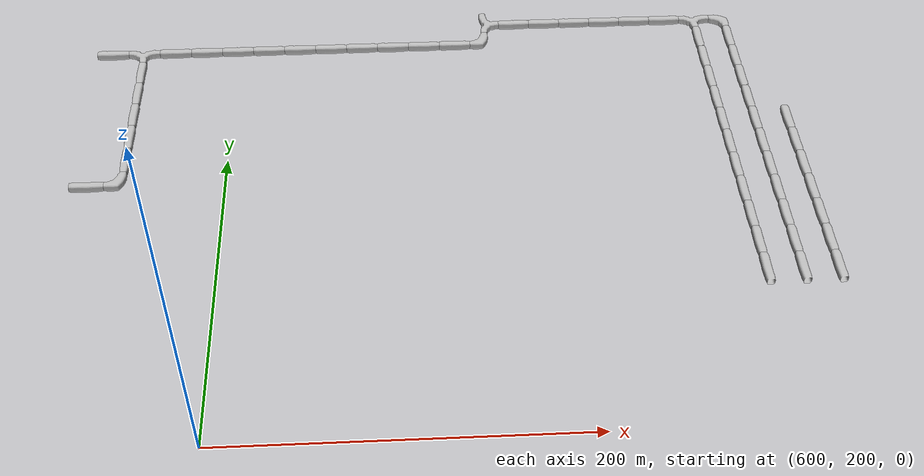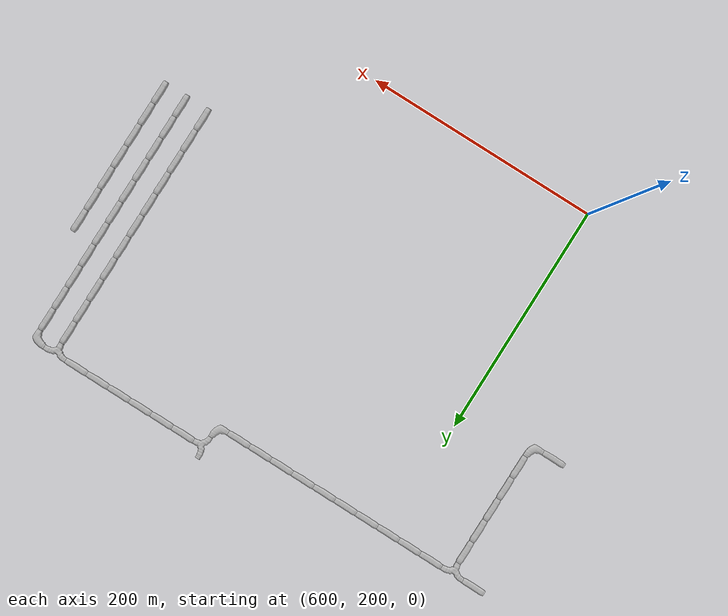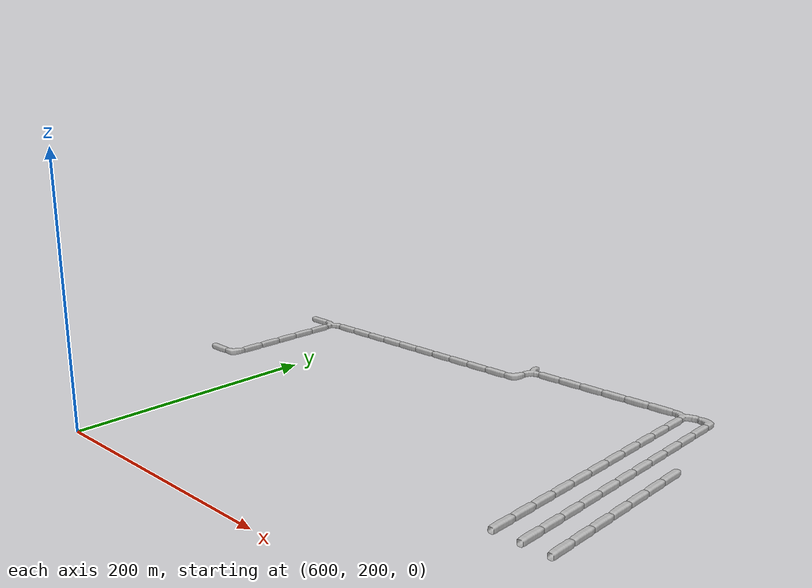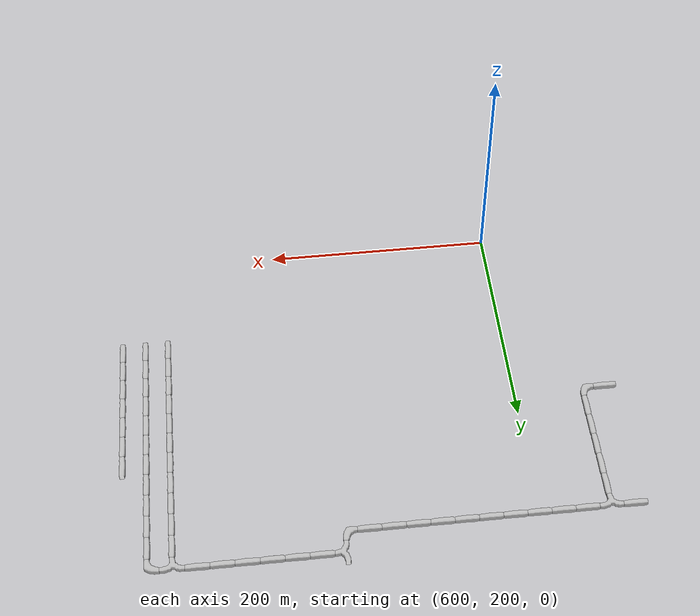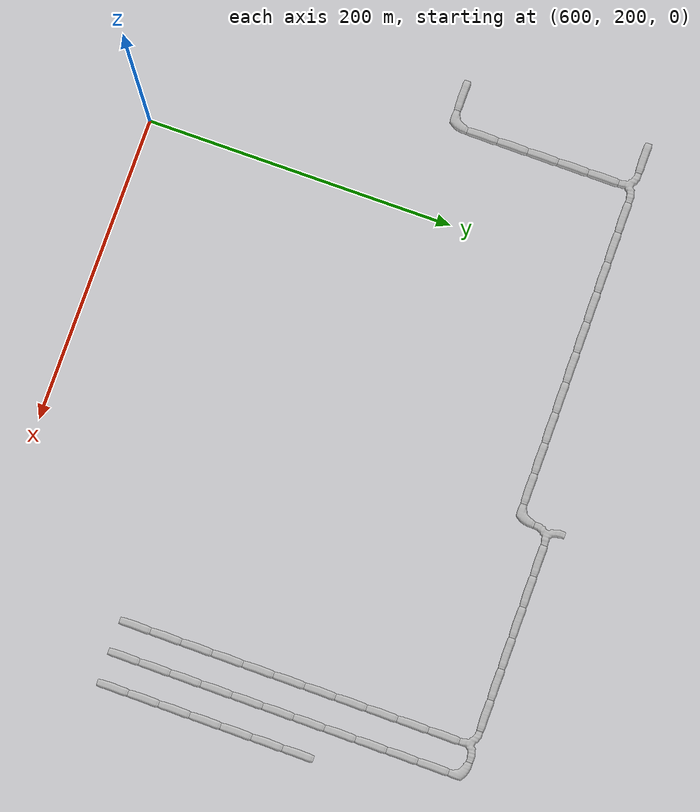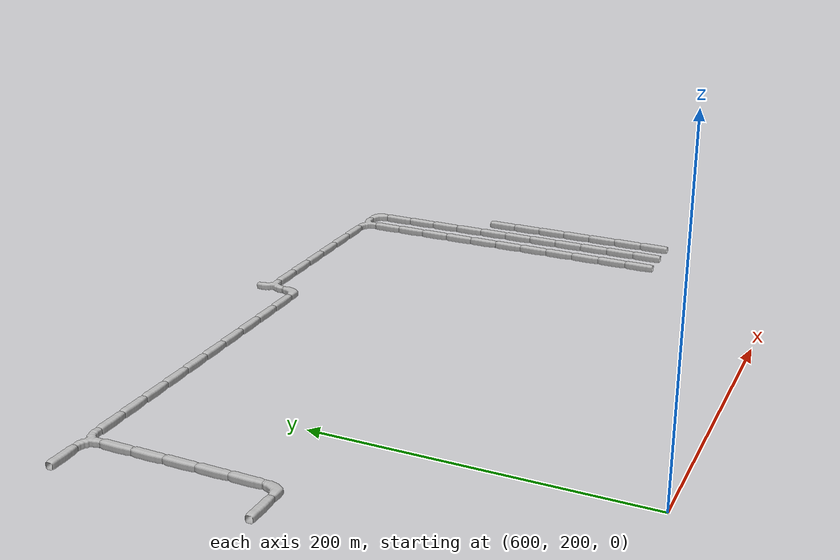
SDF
<sdf version="1.6">
 <world name="cave_32000_2">
  <include>
   <static>true</static>
   <name>cave_46_15</name>
   <pose>920 300 0 0 0 0.0</pose>
   <uri>model://cave_straight_20m</uri>
  </include>
  <include>
   <static>true</static>
   <name>cave_46_16</name>
   <pose>920 320 0 0 0 0.0</pose>
   <uri>model://cave_straight_20m</uri>
  </include>
  <include>
   <static>true</static>
   <name>cave_46_17</name>
   <pose>920 340 0 0 0 0.0</pose>
   <uri>model://cave_straight_20m</uri>
  </include>
  <include>
   <static>true</static>
   <name>cave_46_18</name>
   <pose>920 360 0 0 0 0.0</pose>
   <uri>model://cave_straight_20m</uri>
  </include>
  <include>
   <static>true</static>
   <name>cave_46_19</name>
   <pose>920 380 0 0 0 0.0</pose>
   <uri>model://cave_straight_20m</uri>
  </include>
  <include>
   <static>true</static>
   <name>cave_46_20</name>
   <pose>920 400 0 0 0 0.0</pose>
   <uri>model://cave_straight_20m</uri>
  </include>
  <include>
   <static>true</static>
   <name>cave_46_21</name>
   <pose>920 420 0 0 0 0.0</pose>
   <uri>model://cave_straight_20m</uri>
  </include>
  <include>
   <static>true</static>
   <name>cave_46_22</name>
   <pose>920 440 0 0 0 0.0</pose>
   <uri>model://cave_straight_20m</uri>
  </include>
  <include>
   <static>true</static>
   <name>cave_46_23</name>
   <pose>920 460 0 0 0 0.0</pose>
   <uri>model://cave_straight_20m</uri>
  </include>
  <include>
   <static>true</static>
   <name>cave_46_24</name>
   <pose>920 480 0 0 0 0.0</pose>
   <uri>model://cave_straight_20m</uri>
  </include>
  <include>
   <static>true</static>
   <name>cave_46_25</name>
   <pose>920 500 0 0 0 0.0</pose>
   <uri>model://cave_straight_20m</uri>
  </include>
  <include>
   <static>true</static>
   <name>cave_46_26</name>
   <pose>920 520 0 0 0 3.141592653589793</pose>
   <uri>model://cave_L_20m</uri>
  </include>
  <include>
   <static>true</static>
   <name>cave_45_26</name>
   <pose>900 520 0 0 0 3.141592653589793</pose>
   <uri>model://cave_3way_20m</uri>
  </include>
  <include>
   <static>true</static>
   <name>cave_45_25</name>
   <pose>900 500 0 0 0 0.0</pose>
   <uri>model://cave_straight_20m</uri>
  </include>
  <include>
   <static>true</static>
   <name>cave_45_24</name>
   <pose>900 480 0 0 0 0.0</pose>
   <uri>model://cave_straight_20m</uri>
  </include>
  <include>
   <static>true</static>
   <name>cave_45_23</name>
   <pose>900 460 0 0 0 0.0</pose>
   <uri>model://cave_straight_20m</uri>
  </include>
  <include>
   <static>true</static>
   <name>cave_45_22</name>
   <pose>900 440 0 0 0 0.0</pose>
   <uri>model://cave_straight_20m</uri>
  </include>
  <include>
   <static>true</static>
   <name>cave_45_21</name>
   <pose>900 420 0 0 0 0.0</pose>
   <uri>model://cave_straight_20m</uri>
  </include>
  <include>
   <static>true</static>
   <name>cave_45_20</name>
   <pose>900 400 0 0 0 0.0</pose>
   <uri>model://cave_straight_20m</uri>
  </include>
  <include>
   <static>true</static>
   <name>cave_45_19</name>
   <pose>900 380 0 0 0 0.0</pose>
   <uri>model://cave_straight_20m</uri>
  </include>
  <include>
   <static>true</static>
   <name>cave_45_18</name>
   <pose>900 360 0 0 0 0.0</pose>
   <uri>model://cave_straight_20m</uri>
  </include>
  <include>
   <static>true</static>
   <name>cave_45_17</name>
   <pose>900 340 0 0 0 0.0</pose>
   <uri>model://cave_straight_20m</uri>
  </include>
  <include>
   <static>true</static>
   <name>cave_45_16</name>
   <pose>900 320 0 0 0 0.0</pose>
   <uri>model://cave_straight_20m</uri>
  </include>
  <include>
   <static>true</static>
   <name>cave_45_15</name>
   <pose>900 300 0 0 0 0.0</pose>
   <uri>model://cave_straight_20m</uri>
  </include>
  <include>
   <static>true</static>
   <name>cave_44_26</name>
   <pose>880 520 0 0 0 1.5707963267948966</pose>
   <uri>model://cave_straight_20m</uri>
  </include>
  <include>
   <static>true</static>
   <name>cave_43_26</name>
   <pose>860 520 0 0 0 1.5707963267948966</pose>
   <uri>model://cave_straight_20m</uri>
  </include>
  <include>
   <static>true</static>
   <name>cave_42_26</name>
   <pose>840 520 0 0 0 1.5707963267948966</pose>
   <uri>model://cave_straight_20m</uri>
  </include>
  <include>
   <static>true</static>
   <name>cave_41_26</name>
   <pose>820 520 0 0 0 1.5707963267948966</pose>
   <uri>model://cave_straight_20m</uri>
  </include>
  <include>
   <static>true</static>
   <name>cave_40_26</name>
   <pose>800 520 0 0 0 1.5707963267948966</pose>
   <uri>model://cave_straight_20m</uri>
  </include>
  <include>
   <static>true</static>
   <name>cave_39_26</name>
   <pose>780 520 0 0 0 1.5707963267948966</pose>
   <uri>model://cave_straight_20m</uri>
  </include>
  <include>
   <static>true</static>
   <name>cave_38_26</name>
   <pose>760 520 0 0 0 -1.5707963267948966</pose>
   <uri>model://cave_3way_20m</uri>
  </include>
  <include>
   <static>true</static>
   <name>cave_38_25</name>
   <pose>760 500 0 0 0 1.5707963267948966</pose>
   <uri>model://cave_L_20m</uri>
  </include>
  <include>
   <static>true</static>
   <name>cave_37_25</name>
   <pose>740 500 0 0 0 1.5707963267948966</pose>
   <uri>model://cave_straight_20m</uri>
  </include>
  <include>
   <static>true</static>
   <name>cave_36_25</name>
   <pose>720 500 0 0 0 1.5707963267948966</pose>
   <uri>model://cave_straight_20m</uri>
  </include>
  <include>
   <static>true</static>
   <name>cave_35_25</name>
   <pose>700 500 0 0 0 1.5707963267948966</pose>
   <uri>model://cave_straight_20m</uri>
  </include>
  <include>
   <static>true</static>
   <name>cave_34_25</name>
   <pose>680 500 0 0 0 1.5707963267948966</pose>
   <uri>model://cave_straight_20m</uri>
  </include>
  <include>
   <static>true</static>
   <name>cave_33_25</name>
   <pose>660 500 0 0 0 1.5707963267948966</pose>
   <uri>model://cave_straight_20m</uri>
  </include>
  <include>
   <static>true</static>
   <name>cave_32_25</name>
   <pose>640 500 0 0 0 1.5707963267948966</pose>
   <uri>model://cave_straight_20m</uri>
  </include>
  <include>
   <static>true</static>
   <name>cave_31_25</name>
   <pose>620 500 0 0 0 1.5707963267948966</pose>
   <uri>model://cave_straight_20m</uri>
  </include>
  <include>
   <static>true</static>
   <name>cave_30_25</name>
   <pose>600 500 0 0 0 1.5707963267948966</pose>
   <uri>model://cave_straight_20m</uri>
  </include>
  <include>
   <static>true</static>
   <name>cave_29_25</name>
   <pose>580 500 0 0 0 1.5707963267948966</pose>
   <uri>model://cave_straight_20m</uri>
  </include>
  <include>
   <static>true</static>
   <name>cave_28_25</name>
   <pose>560 500 0 0 0 1.5707963267948966</pose>
   <uri>model://cave_straight_20m</uri>
  </include>
  <include>
   <static>true</static>
   <name>cave_27_25</name>
   <pose>540 500 0 0 0 3.141592653589793</pose>
   <uri>model://cave_3way_20m</uri>
  </include>
  <include>
   <static>true</static>
   <name>cave_27_24</name>
   <pose>540 480 0 0 0 0.0</pose>
   <uri>model://cave_straight_20m</uri>
  </include>
  <include>
   <static>true</static>
   <name>cave_27_23</name>
   <pose>540 460 0 0 0 0.0</pose>
   <uri>model://cave_straight_20m</uri>
  </include>
  <include>
   <static>true</static>
   <name>cave_27_22</name>
   <pose>540 440 0 0 0 0.0</pose>
   <uri>model://cave_straight_20m</uri>
  </include>
  <include>
   <static>true</static>
   <name>cave_27_21</name>
   <pose>540 420 0 0 0 0.0</pose>
   <uri>model://cave_straight_20m</uri>
  </include>
  <include>
   <static>true</static>
   <name>cave_27_20</name>
   <pose>540 400 0 0 0 0.0</pose>
   <uri>model://cave_straight_20m</uri>
  </include>
  <include>
   <static>true</static>
   <name>cave_27_19</name>
   <pose>540 380 0 0 0 1.5707963267948966</pose>
   <uri>model://cave_L_20m</uri>
  </include>
  <include>
   <static>true</static>
   <name>cave_26_19</name>
   <pose>520 380 0 0 0 1.5707963267948966</pose>
   <uri>model://cave_straight_20m</uri>
  </include>
  <include>
   <static>true</static>
   <name>cave_26_25</name>
   <pose>520 500 0 0 0 1.5707963267948966</pose>
   <uri>model://cave_straight_20m</uri>
  </include>
  <include>
   <static>true</static>
   <name>cave_47_15</name>
   <pose>940 300 0 0 0 0.0</pose>
   <uri>model://cave_straight_20m</uri>
  </include>
  <include>
   <static>true</static>
   <name>cave_47_16</name>
   <pose>940 320 0 0 0 0.0</pose>
   <uri>model://cave_straight_20m</uri>
  </include>
  <include>
   <static>true</static>
   <name>cave_47_17</name>
   <pose>940 340 0 0 0 0.0</pose>
   <uri>model://cave_straight_20m</uri>
  </include>
  <include>
   <static>true</static>
   <name>cave_47_18</name>
   <pose>940 360 0 0 0 0.0</pose>
   <uri>model://cave_straight_20m</uri>
  </include>
  <include>
   <static>true</static>
   <name>cave_47_19</name>
   <pose>940 380 0 0 0 0.0</pose>
   <uri>model://cave_straight_20m</uri>
  </include>
  <include>
   <static>true</static>
   <name>cave_47_20</name>
   <pose>940 400 0 0 0 0.0</pose>
   <uri>model://cave_straight_20m</uri>
  </include>
  <include>
   <static>true</static>
   <name>cave_47_21</name>
   <pose>940 420 0 0 0 0.0</pose>
   <uri>model://cave_straight_20m</uri>
  </include>
 </world>
</sdf>
